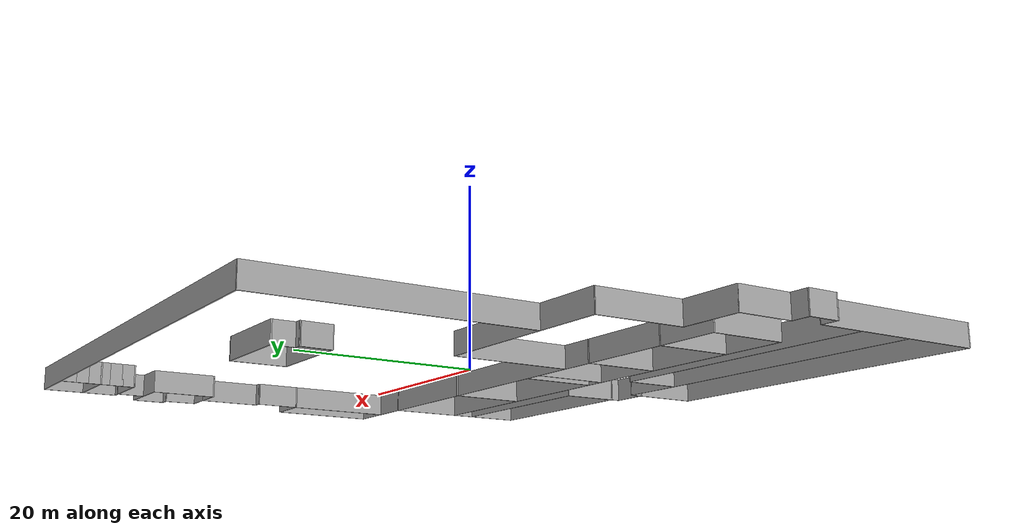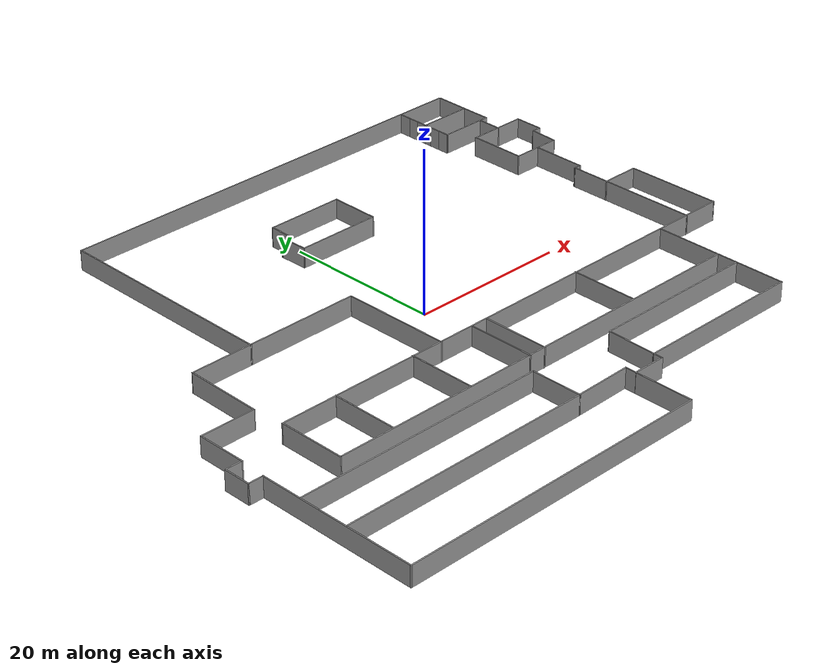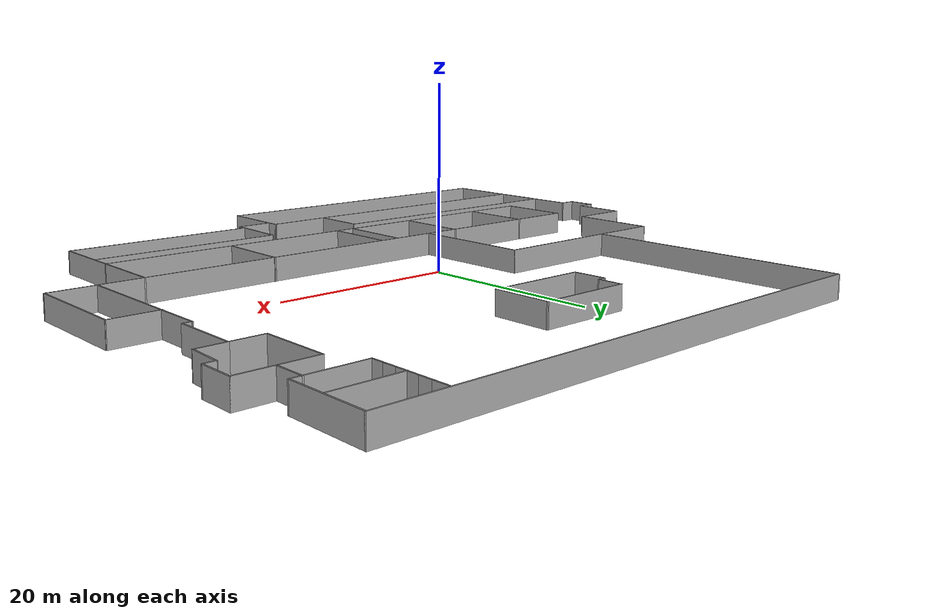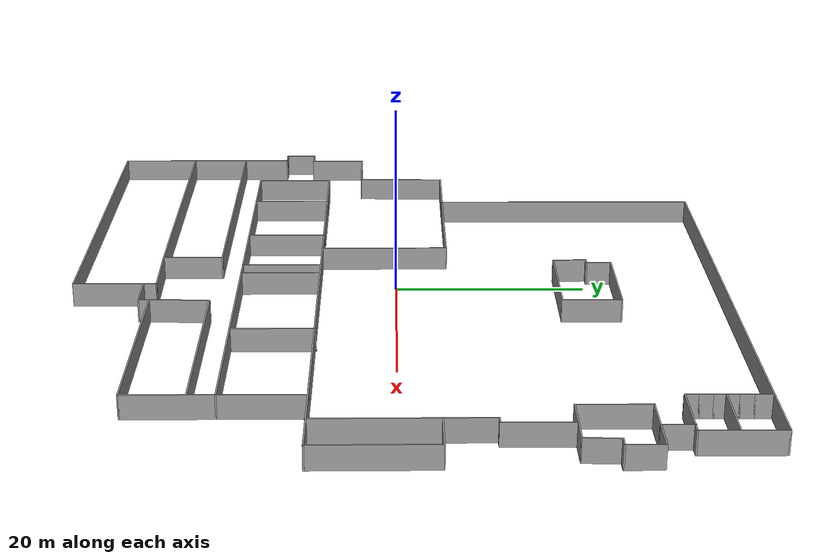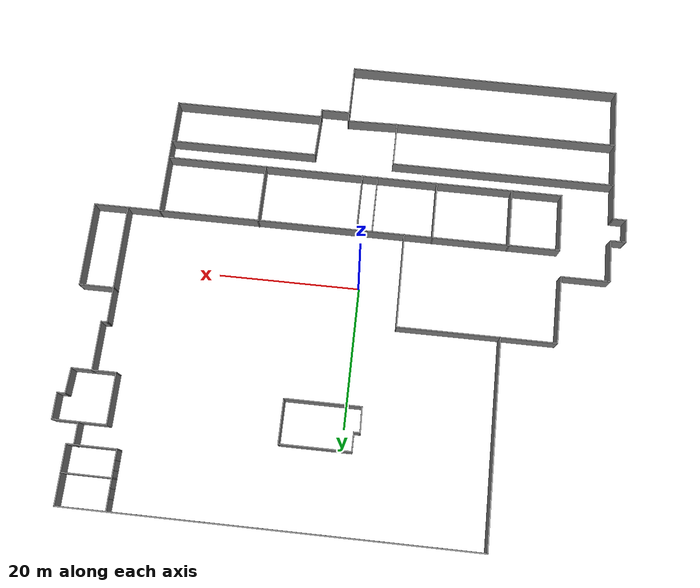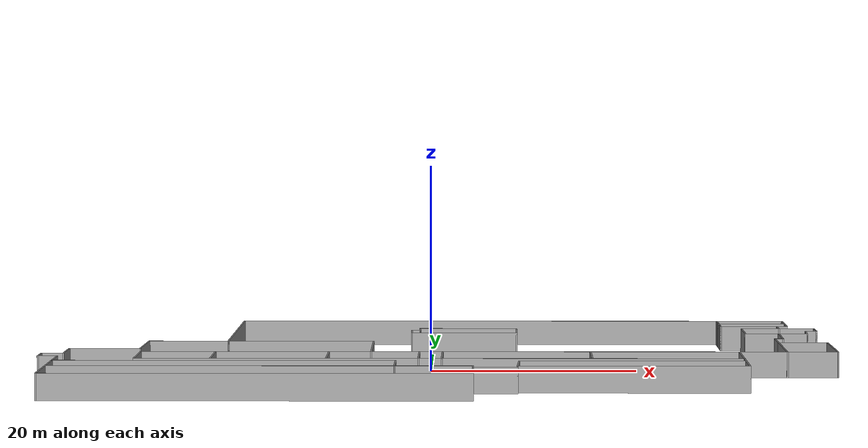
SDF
<?xml version='1.0'?>
<sdf version='1.7'>
  <model name='85_4f_walls'>
    <pose>1.01713 0.175249 0 0 -0 0</pose>
    <link name='Wall_0'>
      <collision name='Wall_0_Collision'>
        <geometry>
          <box>
            <size>56.75 0.15 2.5</size>
          </box>
        </geometry>
        <pose>0 0 1.25 0 -0 0</pose>
      </collision>
      <visual name='Wall_0_Visual'>
        <pose>0 0 1.25 0 -0 0</pose>
        <geometry>
          <box>
            <size>56.75 0.15 2.5</size>
          </box>
        </geometry>
        <material>
          <script>
            <uri>file://media/materials/scripts/gazebo.material</uri>
            <name>Gazebo/Grey</name>
          </script>
          <ambient>1 1 1 1</ambient>
        </material>
        <meta>
          <layer>0</layer>
        </meta>
      </visual>
      <pose>7.19412 33.9066 0 0 -0 0</pose>
    </link>
    <link name='Wall_1'>
      <collision name='Wall_1_Collision'>
        <geometry>
          <box>
            <size>8.25 0.15 2.5</size>
          </box>
        </geometry>
        <pose>0 0 1.25 0 -0 0</pose>
      </collision>
      <visual name='Wall_1_Visual'>
        <pose>0 0 1.25 0 -0 0</pose>
        <geometry>
          <box>
            <size>8.25 0.15 2.5</size>
          </box>
        </geometry>
        <material>
          <script>
            <uri>file://media/materials/scripts/gazebo.material</uri>
            <name>Gazebo/Grey</name>
          </script>
          <ambient>1 1 1 1</ambient>
        </material>
        <meta>
          <layer>0</layer>
        </meta>
      </visual>
      <pose>35.4941 29.8566 0 0 -0 -1.5708</pose>
    </link>
    <link name='Wall_11'>
      <collision name='Wall_11_Collision'>
        <geometry>
          <box>
            <size>7 0.15 2.5</size>
          </box>
        </geometry>
        <pose>0 0 1.25 0 -0 0</pose>
      </collision>
      <visual name='Wall_11_Visual'>
        <pose>0 0 1.25 0 -0 0</pose>
        <geometry>
          <box>
            <size>7 0.15 2.5</size>
          </box>
        </geometry>
        <material>
          <script>
            <uri>file://media/materials/scripts/gazebo.material</uri>
            <name>Gazebo/Grey</name>
          </script>
          <ambient>1 1 1 1</ambient>
        </material>
        <meta>
          <layer>0</layer>
        </meta>
      </visual>
      <pose>32.0479 29.5726 0 0 -0 3.14159</pose>
    </link>
    <link name='Wall_13'>
      <collision name='Wall_13_Collision'>
        <geometry>
          <box>
            <size>28.7814 0.15 2.5</size>
          </box>
        </geometry>
        <pose>0 0 1.25 0 -0 0</pose>
      </collision>
      <visual name='Wall_13_Visual'>
        <pose>0 0 1.25 0 -0 0</pose>
        <geometry>
          <box>
            <size>28.7814 0.15 2.5</size>
          </box>
        </geometry>
        <material>
          <script>
            <uri>file://media/materials/scripts/gazebo.material</uri>
            <name>Gazebo/Grey</name>
          </script>
          <ambient>1 1 1 1</ambient>
        </material>
        <meta>
          <layer>0</layer>
        </meta>
      </visual>
      <pose>-21.1216 19.591 0 0 -0 -1.57189</pose>
    </link>
    <link name='Wall_14'>
      <collision name='Wall_14_Collision'>
        <geometry>
          <box>
            <size>14.5314 0.15 2.5</size>
          </box>
        </geometry>
        <pose>0 0 1.25 0 -0 0</pose>
      </collision>
      <visual name='Wall_14_Visual'>
        <pose>0 0 1.25 0 -0 0</pose>
        <geometry>
          <box>
            <size>14.5314 0.15 2.5</size>
          </box>
        </geometry>
        <material>
          <script>
            <uri>file://media/materials/scripts/gazebo.material</uri>
            <name>Gazebo/Grey</name>
          </script>
          <ambient>1 1 1 1</ambient>
        </material>
        <meta>
          <layer>0</layer>
        </meta>
      </visual>
      <pose>-13.9466 5.29096 0 0 -0 0.002181</pose>
    </link>
    <link name='Wall_15'>
      <collision name='Wall_15_Collision'>
        <geometry>
          <box>
            <size>13.7495 0.15 2.5</size>
          </box>
        </geometry>
        <pose>0 0 1.25 0 -0 0</pose>
      </collision>
      <visual name='Wall_15_Visual'>
        <pose>0 0 1.25 0 -0 0</pose>
        <geometry>
          <box>
            <size>13.7495 0.15 2.5</size>
          </box>
        </geometry>
        <material>
          <script>
            <uri>file://media/materials/scripts/gazebo.material</uri>
            <name>Gazebo/Grey</name>
          </script>
          <ambient>1 1 1 1</ambient>
        </material>
        <meta>
          <layer>0</layer>
        </meta>
      </visual>
      <pose>-6.70238 -1.49288 0 0 -0 -1.56293</pose>
    </link>
    <link name='Wall_16'>
      <collision name='Wall_16_Collision'>
        <geometry>
          <box>
            <size>40 0.15 2.5</size>
          </box>
        </geometry>
        <pose>0 0 1.25 0 -0 0</pose>
      </collision>
      <visual name='Wall_16_Visual'>
        <pose>0 0 1.25 0 -0 0</pose>
        <geometry>
          <box>
            <size>40 0.15 2.5</size>
          </box>
        </geometry>
        <material>
          <script>
            <uri>file://media/materials/scripts/gazebo.material</uri>
            <name>Gazebo/Grey</name>
          </script>
          <ambient>1 1 1 1</ambient>
        </material>
        <meta>
          <layer>0</layer>
        </meta>
      </visual>
      <pose>13.2761 -8.25672 0 0 -0 0</pose>
    </link>
    <link name='Wall_17'>
      <collision name='Wall_17_Collision'>
        <geometry>
          <box>
            <size>17.2494 0.15 2.5</size>
          </box>
        </geometry>
        <pose>0 0 1.25 0 -0 0</pose>
      </collision>
      <visual name='Wall_17_Visual'>
        <pose>0 0 1.25 0 -0 0</pose>
        <geometry>
          <box>
            <size>17.2494 0.15 2.5</size>
          </box>
        </geometry>
        <material>
          <script>
            <uri>file://media/materials/scripts/gazebo.material</uri>
            <name>Gazebo/Grey</name>
          </script>
          <ambient>1 1 1 1</ambient>
        </material>
        <meta>
          <layer>0</layer>
        </meta>
      </visual>
      <pose>33.1476 0.257124 0 0 -0 1.57705</pose>
    </link>
    <link name='Wall_18'>
      <collision name='Wall_18_Collision'>
        <geometry>
          <box>
            <size>1 0.15 2.5</size>
          </box>
        </geometry>
        <pose>0 0 1.25 0 -0 0</pose>
      </collision>
      <visual name='Wall_18_Visual'>
        <pose>0 0 1.25 0 -0 0</pose>
        <geometry>
          <box>
            <size>1 0.15 2.5</size>
          </box>
        </geometry>
        <material>
          <script>
            <uri>file://media/materials/scripts/gazebo.material</uri>
            <name>Gazebo/Grey</name>
          </script>
          <ambient>1 1 1 1</ambient>
        </material>
        <meta>
          <layer>0</layer>
        </meta>
      </visual>
      <pose>33.5191 8.80664 0 0 -0 0</pose>
    </link>
    <link name='Wall_19'>
      <collision name='Wall_19_Collision'>
        <geometry>
          <box>
            <size>7 0.15 2.5</size>
          </box>
        </geometry>
        <pose>0 0 1.25 0 -0 0</pose>
      </collision>
      <visual name='Wall_19_Visual'>
        <pose>0 0 1.25 0 -0 0</pose>
        <geometry>
          <box>
            <size>7 0.15 2.5</size>
          </box>
        </geometry>
        <material>
          <script>
            <uri>file://media/materials/scripts/gazebo.material</uri>
            <name>Gazebo/Grey</name>
          </script>
          <ambient>1 1 1 1</ambient>
        </material>
        <meta>
          <layer>0</layer>
        </meta>
      </visual>
      <pose>33.9441 12.2316 0 0 -0 1.5708</pose>
    </link>
    <link name='Wall_20'>
      <collision name='Wall_20_Collision'>
        <geometry>
          <box>
            <size>3.5 0.15 2.5</size>
          </box>
        </geometry>
        <pose>0 0 1.25 0 -0 0</pose>
      </collision>
      <visual name='Wall_20_Visual'>
        <pose>0 0 1.25 0 -0 0</pose>
        <geometry>
          <box>
            <size>3.5 0.15 2.5</size>
          </box>
        </geometry>
        <material>
          <script>
            <uri>file://media/materials/scripts/gazebo.material</uri>
            <name>Gazebo/Grey</name>
          </script>
          <ambient>1 1 1 1</ambient>
        </material>
        <meta>
          <layer>0</layer>
        </meta>
      </visual>
      <pose>32.2691 15.6566 0 0 -0 3.14159</pose>
    </link>
    <link name='Wall_21'>
      <collision name='Wall_21_Collision'>
        <geometry>
          <box>
            <size>7.26773 0.15 2.5</size>
          </box>
        </geometry>
        <pose>0 0 1.25 0 -0 0</pose>
      </collision>
      <visual name='Wall_21_Visual'>
        <pose>0 0 1.25 0 -0 0</pose>
        <geometry>
          <box>
            <size>7.26773 0.15 2.5</size>
          </box>
        </geometry>
        <material>
          <script>
            <uri>file://media/materials/scripts/gazebo.material</uri>
            <name>Gazebo/Grey</name>
          </script>
          <ambient>1 1 1 1</ambient>
        </material>
        <meta>
          <layer>0</layer>
        </meta>
      </visual>
      <pose>30.5941 19.2155 0 0 -0 1.5708</pose>
    </link>
    <link name='Wall_22'>
      <collision name='Wall_22_Collision'>
        <geometry>
          <box>
            <size>4 0.15 2.5</size>
          </box>
        </geometry>
        <pose>0 0 1.25 0 -0 0</pose>
      </collision>
      <visual name='Wall_22_Visual'>
        <pose>0 0 1.25 0 -0 0</pose>
        <geometry>
          <box>
            <size>4 0.15 2.5</size>
          </box>
        </geometry>
        <material>
          <script>
            <uri>file://media/materials/scripts/gazebo.material</uri>
            <name>Gazebo/Grey</name>
          </script>
          <ambient>1 1 1 1</ambient>
        </material>
        <meta>
          <layer>0</layer>
        </meta>
      </visual>
      <pose>32.5191 22.7744 0 0 -0 0</pose>
    </link>
    <link name='Wall_25'>
      <collision name='Wall_25_Collision'>
        <geometry>
          <box>
            <size>3.23227 0.15 2.5</size>
          </box>
        </geometry>
        <pose>0 0 1.25 0 -0 0</pose>
      </collision>
      <visual name='Wall_25_Visual'>
        <pose>0 0 1.25 0 -0 0</pose>
        <geometry>
          <box>
            <size>3.23227 0.15 2.5</size>
          </box>
        </geometry>
        <material>
          <script>
            <uri>file://media/materials/scripts/gazebo.material</uri>
            <name>Gazebo/Grey</name>
          </script>
          <ambient>1 1 1 1</ambient>
        </material>
        <meta>
          <layer>0</layer>
        </meta>
      </visual>
      <pose>34.4441 24.3155 0 0 -0 1.5708</pose>
    </link>
    <link name='Wall_27'>
      <collision name='Wall_27_Collision'>
        <geometry>
          <box>
            <size>3 0.15 2.5</size>
          </box>
        </geometry>
        <pose>0 0 1.25 0 -0 0</pose>
      </collision>
      <visual name='Wall_27_Visual'>
        <pose>0 0 1.25 0 -0 0</pose>
        <geometry>
          <box>
            <size>3 0.15 2.5</size>
          </box>
        </geometry>
        <material>
          <script>
            <uri>file://media/materials/scripts/gazebo.material</uri>
            <name>Gazebo/Grey</name>
          </script>
          <ambient>1 1 1 1</ambient>
        </material>
        <meta>
          <layer>0</layer>
        </meta>
      </visual>
      <pose>35.3691 15.6566 0 0 -0 0</pose>
    </link>
    <link name='Wall_35'>
      <collision name='Wall_35_Collision'>
        <geometry>
          <box>
            <size>3.75 0.15 2.5</size>
          </box>
        </geometry>
        <pose>0 0 1.25 0 -0 0</pose>
      </collision>
      <visual name='Wall_35_Visual'>
        <pose>0 0 1.25 0 -0 0</pose>
        <geometry>
          <box>
            <size>3.75 0.15 2.5</size>
          </box>
        </geometry>
        <material>
          <script>
            <uri>file://media/materials/scripts/gazebo.material</uri>
            <name>Gazebo/Grey</name>
          </script>
          <ambient>1 1 1 1</ambient>
        </material>
        <meta>
          <layer>0</layer>
        </meta>
      </visual>
      <pose>36.2441 22.7744 0 0 -0 0</pose>
    </link>
    <link name='Wall_36'>
      <collision name='Wall_36_Collision'>
        <geometry>
          <box>
            <size>3.75 0.15 2.5</size>
          </box>
        </geometry>
        <pose>0 0 1.25 0 -0 0</pose>
      </collision>
      <visual name='Wall_36_Visual'>
        <pose>0 0 1.25 0 -0 0</pose>
        <geometry>
          <box>
            <size>3.75 0.15 2.5</size>
          </box>
        </geometry>
        <material>
          <script>
            <uri>file://media/materials/scripts/gazebo.material</uri>
            <name>Gazebo/Grey</name>
          </script>
          <ambient>1 1 1 1</ambient>
        </material>
        <meta>
          <layer>0</layer>
        </meta>
      </visual>
      <pose>38.0441 20.9744 0 0 -0 -1.5708</pose>
    </link>
    <link name='Wall_37'>
      <collision name='Wall_37_Collision'>
        <geometry>
          <box>
            <size>1.25 0.15 2.5</size>
          </box>
        </geometry>
        <pose>0 0 1.25 0 -0 0</pose>
      </collision>
      <visual name='Wall_37_Visual'>
        <pose>0 0 1.25 0 -0 0</pose>
        <geometry>
          <box>
            <size>1.25 0.15 2.5</size>
          </box>
        </geometry>
        <material>
          <script>
            <uri>file://media/materials/scripts/gazebo.material</uri>
            <name>Gazebo/Grey</name>
          </script>
          <ambient>1 1 1 1</ambient>
        </material>
        <meta>
          <layer>0</layer>
        </meta>
      </visual>
      <pose>37.4941 19.1744 0 0 -0 3.14159</pose>
    </link>
    <link name='Wall_38'>
      <collision name='Wall_38_Collision'>
        <geometry>
          <box>
            <size>3.67093 0.15 2.5</size>
          </box>
        </geometry>
        <pose>0 0 1.25 0 -0 0</pose>
      </collision>
      <visual name='Wall_38_Visual'>
        <pose>0 0 1.25 0 -0 0</pose>
        <geometry>
          <box>
            <size>3.67093 0.15 2.5</size>
          </box>
        </geometry>
        <material>
          <script>
            <uri>file://media/materials/scripts/gazebo.material</uri>
            <name>Gazebo/Grey</name>
          </script>
          <ambient>1 1 1 1</ambient>
        </material>
        <meta>
          <layer>0</layer>
        </meta>
      </visual>
      <pose>36.8691 17.4155 0 0 -0 -1.61341</pose>
    </link>
    <link name='Wall_4'>
      <collision name='Wall_4_Collision'>
        <geometry>
          <box>
            <size>7 0.15 2.5</size>
          </box>
        </geometry>
        <pose>0 0 1.25 0 -0 0</pose>
      </collision>
      <visual name='Wall_4_Visual'>
        <pose>0 0 1.25 0 -0 0</pose>
        <geometry>
          <box>
            <size>7 0.15 2.5</size>
          </box>
        </geometry>
        <material>
          <script>
            <uri>file://media/materials/scripts/gazebo.material</uri>
            <name>Gazebo/Grey</name>
          </script>
          <ambient>1 1 1 1</ambient>
        </material>
        <meta>
          <layer>0</layer>
        </meta>
      </visual>
      <pose>32.0691 25.8066 0 0 -0 3.14159</pose>
    </link>
    <link name='Wall_40'>
      <collision name='Wall_40_Collision'>
        <geometry>
          <box>
            <size>5 0.15 2.5</size>
          </box>
        </geometry>
        <pose>0 0 1.25 0 -0 0</pose>
      </collision>
      <visual name='Wall_40_Visual'>
        <pose>0 0 1.25 0 -0 0</pose>
        <geometry>
          <box>
            <size>5 0.15 2.5</size>
          </box>
        </geometry>
        <material>
          <script>
            <uri>file://media/materials/scripts/gazebo.material</uri>
            <name>Gazebo/Grey</name>
          </script>
          <ambient>1 1 1 1</ambient>
        </material>
        <meta>
          <layer>0</layer>
        </meta>
      </visual>
      <pose>35.5175 3.82548 0 0 -0 0</pose>
    </link>
    <link name='Wall_41'>
      <collision name='Wall_41_Collision'>
        <geometry>
          <box>
            <size>12.2274 0.15 2.5</size>
          </box>
        </geometry>
        <pose>0 0 1.25 0 -0 0</pose>
      </collision>
      <visual name='Wall_41_Visual'>
        <pose>0 0 1.25 0 -0 0</pose>
        <geometry>
          <box>
            <size>12.2274 0.15 2.5</size>
          </box>
        </geometry>
        <material>
          <script>
            <uri>file://media/materials/scripts/gazebo.material</uri>
            <name>Gazebo/Grey</name>
          </script>
          <ambient>1 1 1 1</ambient>
        </material>
        <meta>
          <layer>0</layer>
        </meta>
      </visual>
      <pose>37.9868 -2.21306 0 0 -0 -1.56346</pose>
    </link>
    <link name='Wall_42'>
      <collision name='Wall_42_Collision'>
        <geometry>
          <box>
            <size>5 0.15 2.5</size>
          </box>
        </geometry>
        <pose>0 0 1.25 0 -0 0</pose>
      </collision>
      <visual name='Wall_42_Visual'>
        <pose>0 0 1.25 0 -0 0</pose>
        <geometry>
          <box>
            <size>5 0.15 2.5</size>
          </box>
        </geometry>
        <material>
          <script>
            <uri>file://media/materials/scripts/gazebo.material</uri>
            <name>Gazebo/Grey</name>
          </script>
          <ambient>1 1 1 1</ambient>
        </material>
        <meta>
          <layer>0</layer>
        </meta>
      </visual>
      <pose>35.6239 -8.25159 0 0 -0 3.14159</pose>
    </link>
    <link name='Wall_45'>
      <collision name='Wall_45_Collision'>
        <geometry>
          <box>
            <size>22.25 0.15 2.5</size>
          </box>
        </geometry>
        <pose>0 0 1.25 0 -0 0</pose>
      </collision>
      <visual name='Wall_45_Visual'>
        <pose>0 0 1.25 0 -0 0</pose>
        <geometry>
          <box>
            <size>22.25 0.15 2.5</size>
          </box>
        </geometry>
        <material>
          <script>
            <uri>file://media/materials/scripts/gazebo.material</uri>
            <name>Gazebo/Grey</name>
          </script>
          <ambient>1 1 1 1</ambient>
        </material>
        <meta>
          <layer>0</layer>
        </meta>
      </visual>
      <pose>-17.6989 -8.25672 0 0 -0 3.14159</pose>
    </link>
    <link name='Wall_46'>
      <collision name='Wall_46_Collision'>
        <geometry>
          <box>
            <size>8.5 0.15 2.5</size>
          </box>
        </geometry>
        <pose>0 0 1.25 0 -0 0</pose>
      </collision>
      <visual name='Wall_46_Visual'>
        <pose>0 0 1.25 0 -0 0</pose>
        <geometry>
          <box>
            <size>8.5 0.15 2.5</size>
          </box>
        </geometry>
        <material>
          <script>
            <uri>file://media/materials/scripts/gazebo.material</uri>
            <name>Gazebo/Grey</name>
          </script>
          <ambient>1 1 1 1</ambient>
        </material>
        <meta>
          <layer>0</layer>
        </meta>
      </visual>
      <pose>-28.7489 -12.4317 0 0 -0 -1.5708</pose>
    </link>
    <link name='Wall_47'>
      <collision name='Wall_47_Collision'>
        <geometry>
          <box>
            <size>57.5 0.15 2.5</size>
          </box>
        </geometry>
        <pose>0 0 1.25 0 -0 0</pose>
      </collision>
      <visual name='Wall_47_Visual'>
        <pose>0 0 1.25 0 -0 0</pose>
        <geometry>
          <box>
            <size>57.5 0.15 2.5</size>
          </box>
        </geometry>
        <material>
          <script>
            <uri>file://media/materials/scripts/gazebo.material</uri>
            <name>Gazebo/Grey</name>
          </script>
          <ambient>1 1 1 1</ambient>
        </material>
        <meta>
          <layer>0</layer>
        </meta>
      </visual>
      <pose>-0.073876 -16.6067 0 0 -0 0</pose>
    </link>
    <link name='Wall_48'>
      <collision name='Wall_48_Collision'>
        <geometry>
          <box>
            <size>8.5 0.15 2.5</size>
          </box>
        </geometry>
        <pose>0 0 1.25 0 -0 0</pose>
      </collision>
      <visual name='Wall_48_Visual'>
        <pose>0 0 1.25 0 -0 0</pose>
        <geometry>
          <box>
            <size>8.5 0.15 2.5</size>
          </box>
        </geometry>
        <material>
          <script>
            <uri>file://media/materials/scripts/gazebo.material</uri>
            <name>Gazebo/Grey</name>
          </script>
          <ambient>1 1 1 1</ambient>
        </material>
        <meta>
          <layer>0</layer>
        </meta>
      </visual>
      <pose>28.6011 -12.4317 0 0 -0 1.5708</pose>
    </link>
    <link name='Wall_5'>
      <collision name='Wall_5_Collision'>
        <geometry>
          <box>
            <size>1.5 0.15 2.5</size>
          </box>
        </geometry>
        <pose>0 0 1.25 0 -0 0</pose>
      </collision>
      <visual name='Wall_5_Visual'>
        <pose>0 0 1.25 0 -0 0</pose>
        <geometry>
          <box>
            <size>1.5 0.15 2.5</size>
          </box>
        </geometry>
        <material>
          <script>
            <uri>file://media/materials/scripts/gazebo.material</uri>
            <name>Gazebo/Grey</name>
          </script>
          <ambient>1 1 1 1</ambient>
        </material>
        <meta>
          <layer>0</layer>
        </meta>
      </visual>
      <pose>28.6441 26.4816 0 0 -0 1.5708</pose>
    </link>
    <link name='Wall_50'>
      <collision name='Wall_50_Collision'>
        <geometry>
          <box>
            <size>8.5 0.15 2.5</size>
          </box>
        </geometry>
        <pose>0 0 1.25 0 -0 0</pose>
      </collision>
      <visual name='Wall_50_Visual'>
        <pose>0 0 1.25 0 -0 0</pose>
        <geometry>
          <box>
            <size>8.5 0.15 2.5</size>
          </box>
        </geometry>
        <material>
          <script>
            <uri>file://media/materials/scripts/gazebo.material</uri>
            <name>Gazebo/Grey</name>
          </script>
          <ambient>1 1 1 1</ambient>
        </material>
        <meta>
          <layer>0</layer>
        </meta>
      </visual>
      <pose>-2.02252 -12.4746 0 0 -0 1.5708</pose>
    </link>
    <link name='Wall_52'>
      <collision name='Wall_52_Collision'>
        <geometry>
          <box>
            <size>8.5 0.15 2.5</size>
          </box>
        </geometry>
        <pose>0 0 1.25 0 -0 0</pose>
      </collision>
      <visual name='Wall_52_Visual'>
        <pose>0 0 1.25 0 -0 0</pose>
        <geometry>
          <box>
            <size>8.5 0.15 2.5</size>
          </box>
        </geometry>
        <material>
          <script>
            <uri>file://media/materials/scripts/gazebo.material</uri>
            <name>Gazebo/Grey</name>
          </script>
          <ambient>1 1 1 1</ambient>
        </material>
        <meta>
          <layer>0</layer>
        </meta>
      </visual>
      <pose>0.18892 -12.4746 0 0 -0 1.5708</pose>
    </link>
    <link name='Wall_54'>
      <collision name='Wall_54_Collision'>
        <geometry>
          <box>
            <size>8.5 0.15 2.5</size>
          </box>
        </geometry>
        <pose>0 0 1.25 0 -0 0</pose>
      </collision>
      <visual name='Wall_54_Visual'>
        <pose>0 0 1.25 0 -0 0</pose>
        <geometry>
          <box>
            <size>8.5 0.15 2.5</size>
          </box>
        </geometry>
        <material>
          <script>
            <uri>file://media/materials/scripts/gazebo.material</uri>
            <name>Gazebo/Grey</name>
          </script>
          <ambient>1 1 1 1</ambient>
        </material>
        <meta>
          <layer>0</layer>
        </meta>
      </visual>
      <pose>14.3492 -12.3319 0 0 -0 1.5708</pose>
    </link>
    <link name='Wall_56'>
      <collision name='Wall_56_Collision'>
        <geometry>
          <box>
            <size>8.5 0.15 2.5</size>
          </box>
        </geometry>
        <pose>0 0 1.25 0 -0 0</pose>
      </collision>
      <visual name='Wall_56_Visual'>
        <pose>0 0 1.25 0 -0 0</pose>
        <geometry>
          <box>
            <size>8.5 0.15 2.5</size>
          </box>
        </geometry>
        <material>
          <script>
            <uri>file://media/materials/scripts/gazebo.material</uri>
            <name>Gazebo/Grey</name>
          </script>
          <ambient>1 1 1 1</ambient>
        </material>
        <meta>
          <layer>0</layer>
        </meta>
      </visual>
      <pose>-21.5688 -12.4069 0 0 -0 -1.5708</pose>
    </link>
    <link name='Wall_58'>
      <collision name='Wall_58_Collision'>
        <geometry>
          <box>
            <size>8.5 0.15 2.5</size>
          </box>
        </geometry>
        <pose>0 0 1.25 0 -0 0</pose>
      </collision>
      <visual name='Wall_58_Visual'>
        <pose>0 0 1.25 0 -0 0</pose>
        <geometry>
          <box>
            <size>8.5 0.15 2.5</size>
          </box>
        </geometry>
        <material>
          <script>
            <uri>file://media/materials/scripts/gazebo.material</uri>
            <name>Gazebo/Grey</name>
          </script>
          <ambient>1 1 1 1</ambient>
        </material>
        <meta>
          <layer>0</layer>
        </meta>
      </visual>
      <pose>-10.6899 -12.3712 0 0 -0 -1.5708</pose>
    </link>
    <link name='Wall_6'>
      <collision name='Wall_6_Collision'>
        <geometry>
          <box>
            <size>1.5 0.15 2.5</size>
          </box>
        </geometry>
        <pose>0 0 1.25 0 -0 0</pose>
      </collision>
      <visual name='Wall_6_Visual'>
        <pose>0 0 1.25 0 -0 0</pose>
        <geometry>
          <box>
            <size>1.5 0.15 2.5</size>
          </box>
        </geometry>
        <material>
          <script>
            <uri>file://media/materials/scripts/gazebo.material</uri>
            <name>Gazebo/Grey</name>
          </script>
          <ambient>1 1 1 1</ambient>
        </material>
        <meta>
          <layer>0</layer>
        </meta>
      </visual>
      <pose>28.6441 27.8316 0 0 -0 1.5708</pose>
    </link>
    <link name='Wall_60'>
      <collision name='Wall_60_Collision'>
        <geometry>
          <box>
            <size>9 0.15 2.5</size>
          </box>
        </geometry>
        <pose>0 0 1.25 0 -0 0</pose>
      </collision>
      <visual name='Wall_60_Visual'>
        <pose>0 0 1.25 0 -0 0</pose>
        <geometry>
          <box>
            <size>9 0.15 2.5</size>
          </box>
        </geometry>
        <material>
          <script>
            <uri>file://media/materials/scripts/gazebo.material</uri>
            <name>Gazebo/Grey</name>
          </script>
          <ambient>1 1 1 1</ambient>
        </material>
        <meta>
          <layer>0</layer>
        </meta>
      </visual>
      <pose>28.6011 -21.0317 0 0 -0 -1.5708</pose>
    </link>
    <link name='Wall_61'>
      <collision name='Wall_61_Collision'>
        <geometry>
          <box>
            <size>21.5 0.15 2.5</size>
          </box>
        </geometry>
        <pose>0 0 1.25 0 -0 0</pose>
      </collision>
      <visual name='Wall_61_Visual'>
        <pose>0 0 1.25 0 -0 0</pose>
        <geometry>
          <box>
            <size>21.5 0.15 2.5</size>
          </box>
        </geometry>
        <material>
          <script>
            <uri>file://media/materials/scripts/gazebo.material</uri>
            <name>Gazebo/Grey</name>
          </script>
          <ambient>1 1 1 1</ambient>
        </material>
        <meta>
          <layer>0</layer>
        </meta>
      </visual>
      <pose>17.9261 -25.4567 0 0 -0 3.14159</pose>
    </link>
    <link name='Wall_62'>
      <collision name='Wall_62_Collision'>
        <geometry>
          <box>
            <size>1.25 0.15 2.5</size>
          </box>
        </geometry>
        <pose>0 0 1.25 0 -0 0</pose>
      </collision>
      <visual name='Wall_62_Visual'>
        <pose>0 0 1.25 0 -0 0</pose>
        <geometry>
          <box>
            <size>1.25 0.15 2.5</size>
          </box>
        </geometry>
        <material>
          <script>
            <uri>file://media/materials/scripts/gazebo.material</uri>
            <name>Gazebo/Grey</name>
          </script>
          <ambient>1 1 1 1</ambient>
        </material>
        <meta>
          <layer>0</layer>
        </meta>
      </visual>
      <pose>7.25112 -26.0067 0 0 -0 -1.5708</pose>
    </link>
    <link name='Wall_63'>
      <collision name='Wall_63_Collision'>
        <geometry>
          <box>
            <size>4.25 0.15 2.5</size>
          </box>
        </geometry>
        <pose>0 0 1.25 0 -0 0</pose>
      </collision>
      <visual name='Wall_63_Visual'>
        <pose>0 0 1.25 0 -0 0</pose>
        <geometry>
          <box>
            <size>4.25 0.15 2.5</size>
          </box>
        </geometry>
        <material>
          <script>
            <uri>file://media/materials/scripts/gazebo.material</uri>
            <name>Gazebo/Grey</name>
          </script>
          <ambient>1 1 1 1</ambient>
        </material>
        <meta>
          <layer>0</layer>
        </meta>
      </visual>
      <pose>5.20112 -26.5567 0 0 -0 3.14159</pose>
    </link>
    <link name='Wall_64'>
      <collision name='Wall_64_Collision'>
        <geometry>
          <box>
            <size>7.5 0.15 2.5</size>
          </box>
        </geometry>
        <pose>0 0 1.25 0 -0 0</pose>
      </collision>
      <visual name='Wall_64_Visual'>
        <pose>0 0 1.25 0 -0 0</pose>
        <geometry>
          <box>
            <size>7.5 0.15 2.5</size>
          </box>
        </geometry>
        <material>
          <script>
            <uri>file://media/materials/scripts/gazebo.material</uri>
            <name>Gazebo/Grey</name>
          </script>
          <ambient>1 1 1 1</ambient>
        </material>
        <meta>
          <layer>0</layer>
        </meta>
      </visual>
      <pose>3.15112 -30.2317 0 0 -0 -1.5708</pose>
    </link>
    <link name='Wall_65'>
      <collision name='Wall_65_Collision'>
        <geometry>
          <box>
            <size>39.5 0.15 2.5</size>
          </box>
        </geometry>
        <pose>0 0 1.25 0 -0 0</pose>
      </collision>
      <visual name='Wall_65_Visual'>
        <pose>0 0 1.25 0 -0 0</pose>
        <geometry>
          <box>
            <size>39.5 0.15 2.5</size>
          </box>
        </geometry>
        <material>
          <script>
            <uri>file://media/materials/scripts/gazebo.material</uri>
            <name>Gazebo/Grey</name>
          </script>
          <ambient>1 1 1 1</ambient>
        </material>
        <meta>
          <layer>0</layer>
        </meta>
      </visual>
      <pose>-16.5239 -33.9067 0 0 -0 3.14159</pose>
    </link>
    <link name='Wall_66'>
      <collision name='Wall_66_Collision'>
        <geometry>
          <box>
            <size>20.25 0.15 2.5</size>
          </box>
        </geometry>
        <pose>0 0 1.25 0 -0 0</pose>
      </collision>
      <visual name='Wall_66_Visual'>
        <pose>0 0 1.25 0 -0 0</pose>
        <geometry>
          <box>
            <size>20.25 0.15 2.5</size>
          </box>
        </geometry>
        <material>
          <script>
            <uri>file://media/materials/scripts/gazebo.material</uri>
            <name>Gazebo/Grey</name>
          </script>
          <ambient>1 1 1 1</ambient>
        </material>
        <meta>
          <layer>0</layer>
        </meta>
      </visual>
      <pose>-36.1989 -23.8567 0 0 -0 1.5708</pose>
    </link>
    <link name='Wall_67'>
      <collision name='Wall_67_Collision'>
        <geometry>
          <box>
            <size>2 0.15 2.5</size>
          </box>
        </geometry>
        <pose>0 0 1.25 0 -0 0</pose>
      </collision>
      <visual name='Wall_67_Visual'>
        <pose>0 0 1.25 0 -0 0</pose>
        <geometry>
          <box>
            <size>2 0.15 2.5</size>
          </box>
        </geometry>
        <material>
          <script>
            <uri>file://media/materials/scripts/gazebo.material</uri>
            <name>Gazebo/Grey</name>
          </script>
          <ambient>1 1 1 1</ambient>
        </material>
        <meta>
          <layer>0</layer>
        </meta>
      </visual>
      <pose>-37.1239 -13.8067 0 0 -0 3.14159</pose>
    </link>
    <link name='Wall_68'>
      <collision name='Wall_68_Collision'>
        <geometry>
          <box>
            <size>3.5 0.15 2.5</size>
          </box>
        </geometry>
        <pose>0 0 1.25 0 -0 0</pose>
      </collision>
      <visual name='Wall_68_Visual'>
        <pose>0 0 1.25 0 -0 0</pose>
        <geometry>
          <box>
            <size>3.5 0.15 2.5</size>
          </box>
        </geometry>
        <material>
          <script>
            <uri>file://media/materials/scripts/gazebo.material</uri>
            <name>Gazebo/Grey</name>
          </script>
          <ambient>1 1 1 1</ambient>
        </material>
        <meta>
          <layer>0</layer>
        </meta>
      </visual>
      <pose>-38.0489 -12.1317 0 0 -0 1.5708</pose>
    </link>
    <link name='Wall_69'>
      <collision name='Wall_69_Collision'>
        <geometry>
          <box>
            <size>2.25 0.15 2.5</size>
          </box>
        </geometry>
        <pose>0 0 1.25 0 -0 0</pose>
      </collision>
      <visual name='Wall_69_Visual'>
        <pose>0 0 1.25 0 -0 0</pose>
        <geometry>
          <box>
            <size>2.25 0.15 2.5</size>
          </box>
        </geometry>
        <material>
          <script>
            <uri>file://media/materials/scripts/gazebo.material</uri>
            <name>Gazebo/Grey</name>
          </script>
          <ambient>1 1 1 1</ambient>
        </material>
        <meta>
          <layer>0</layer>
        </meta>
      </visual>
      <pose>-36.9989 -10.4567 0 0 -0 0</pose>
    </link>
    <link name='Wall_7'>
      <collision name='Wall_7_Collision'>
        <geometry>
          <box>
            <size>2.5 0.15 2.5</size>
          </box>
        </geometry>
        <pose>0 0 1.25 0 -0 0</pose>
      </collision>
      <visual name='Wall_7_Visual'>
        <pose>0 0 1.25 0 -0 0</pose>
        <geometry>
          <box>
            <size>2.5 0.15 2.5</size>
          </box>
        </geometry>
        <material>
          <script>
            <uri>file://media/materials/scripts/gazebo.material</uri>
            <name>Gazebo/Grey</name>
          </script>
          <ambient>1 1 1 1</ambient>
        </material>
        <meta>
          <layer>0</layer>
        </meta>
      </visual>
      <pose>28.6441 29.6816 0 0 -0 1.5708</pose>
    </link>
    <link name='Wall_70'>
      <collision name='Wall_70_Collision'>
        <geometry>
          <box>
            <size>6.25 0.15 2.5</size>
          </box>
        </geometry>
        <pose>0 0 1.25 0 -0 0</pose>
      </collision>
      <visual name='Wall_70_Visual'>
        <pose>0 0 1.25 0 -0 0</pose>
        <geometry>
          <box>
            <size>6.25 0.15 2.5</size>
          </box>
        </geometry>
        <material>
          <script>
            <uri>file://media/materials/scripts/gazebo.material</uri>
            <name>Gazebo/Grey</name>
          </script>
          <ambient>1 1 1 1</ambient>
        </material>
        <meta>
          <layer>0</layer>
        </meta>
      </visual>
      <pose>-35.9489 -7.40672 0 0 -0 1.5708</pose>
    </link>
    <link name='Wall_71'>
      <collision name='Wall_71_Collision'>
        <geometry>
          <box>
            <size>7 0.15 2.5</size>
          </box>
        </geometry>
        <pose>0 0 1.25 0 -0 0</pose>
      </collision>
      <visual name='Wall_71_Visual'>
        <pose>0 0 1.25 0 -0 0</pose>
        <geometry>
          <box>
            <size>7 0.15 2.5</size>
          </box>
        </geometry>
        <material>
          <script>
            <uri>file://media/materials/scripts/gazebo.material</uri>
            <name>Gazebo/Grey</name>
          </script>
          <ambient>1 1 1 1</ambient>
        </material>
        <meta>
          <layer>0</layer>
        </meta>
      </visual>
      <pose>-32.5239 -4.35672 0 0 -0 0</pose>
    </link>
    <link name='Wall_72'>
      <collision name='Wall_72_Collision'>
        <geometry>
          <box>
            <size>9.78306 0.15 2.5</size>
          </box>
        </geometry>
        <pose>0 0 1.25 0 -0 0</pose>
      </collision>
      <visual name='Wall_72_Visual'>
        <pose>0 0 1.25 0 -0 0</pose>
        <geometry>
          <box>
            <size>9.78306 0.15 2.5</size>
          </box>
        </geometry>
        <material>
          <script>
            <uri>file://media/materials/scripts/gazebo.material</uri>
            <name>Gazebo/Grey</name>
          </script>
          <ambient>1 1 1 1</ambient>
        </material>
        <meta>
          <layer>0</layer>
        </meta>
      </visual>
      <pose>-29.0274 0.459274 0 0 -0 1.55595</pose>
    </link>
    <link name='Wall_73'>
      <collision name='Wall_73_Collision'>
        <geometry>
          <box>
            <size>8 0.15 2.5</size>
          </box>
        </geometry>
        <pose>0 0 1.25 0 -0 0</pose>
      </collision>
      <visual name='Wall_73_Visual'>
        <pose>0 0 1.25 0 -0 0</pose>
        <geometry>
          <box>
            <size>8 0.15 2.5</size>
          </box>
        </geometry>
        <material>
          <script>
            <uri>file://media/materials/scripts/gazebo.material</uri>
            <name>Gazebo/Grey</name>
          </script>
          <ambient>1 1 1 1</ambient>
        </material>
        <meta>
          <layer>0</layer>
        </meta>
      </visual>
      <pose>-25.0309 5.27527 0 0 -0 0</pose>
    </link>
    <link name='Wall_75'>
      <collision name='Wall_75_Collision'>
        <geometry>
          <box>
            <size>32.25 0.15 2.5</size>
          </box>
        </geometry>
        <pose>0 0 1.25 0 -0 0</pose>
      </collision>
      <visual name='Wall_75_Visual'>
        <pose>0 0 1.25 0 -0 0</pose>
        <geometry>
          <box>
            <size>32.25 0.15 2.5</size>
          </box>
        </geometry>
        <material>
          <script>
            <uri>file://media/materials/scripts/gazebo.material</uri>
            <name>Gazebo/Grey</name>
          </script>
          <ambient>1 1 1 1</ambient>
        </material>
        <meta>
          <layer>0</layer>
        </meta>
      </visual>
      <pose>-20.1315 -19.0141 0 0 -0 0</pose>
    </link>
    <link name='Wall_76'>
      <collision name='Wall_76_Collision'>
        <geometry>
          <box>
            <size>6.5 0.15 2.5</size>
          </box>
        </geometry>
        <pose>0 0 1.25 0 -0 0</pose>
      </collision>
      <visual name='Wall_76_Visual'>
        <pose>0 0 1.25 0 -0 0</pose>
        <geometry>
          <box>
            <size>6.5 0.15 2.5</size>
          </box>
        </geometry>
        <material>
          <script>
            <uri>file://media/materials/scripts/gazebo.material</uri>
            <name>Gazebo/Grey</name>
          </script>
          <ambient>1 1 1 1</ambient>
        </material>
        <meta>
          <layer>0</layer>
        </meta>
      </visual>
      <pose>-4.08155 -22.1891 0 0 -0 -1.5708</pose>
    </link>
    <link name='Wall_77'>
      <collision name='Wall_77_Collision'>
        <geometry>
          <box>
            <size>32.25 0.15 2.5</size>
          </box>
        </geometry>
        <pose>0 0 1.25 0 -0 0</pose>
      </collision>
      <visual name='Wall_77_Visual'>
        <pose>0 0 1.25 0 -0 0</pose>
        <geometry>
          <box>
            <size>32.25 0.15 2.5</size>
          </box>
        </geometry>
        <material>
          <script>
            <uri>file://media/materials/scripts/gazebo.material</uri>
            <name>Gazebo/Grey</name>
          </script>
          <ambient>1 1 1 1</ambient>
        </material>
        <meta>
          <layer>0</layer>
        </meta>
      </visual>
      <pose>-20.1315 -25.3641 0 0 -0 3.14159</pose>
    </link>
    <link name='Wall_79'>
      <collision name='Wall_79_Collision'>
        <geometry>
          <box>
            <size>7.38438 0.15 2.5</size>
          </box>
        </geometry>
        <pose>0 0 1.25 0 -0 0</pose>
      </collision>
      <visual name='Wall_79_Visual'>
        <pose>0 0 1.25 0 -0 0</pose>
        <geometry>
          <box>
            <size>7.38438 0.15 2.5</size>
          </box>
        </geometry>
        <material>
          <script>
            <uri>file://media/materials/scripts/gazebo.material</uri>
            <name>Gazebo/Grey</name>
          </script>
          <ambient>1 1 1 1</ambient>
        </material>
        <meta>
          <layer>0</layer>
        </meta>
      </visual>
      <pose>-0.465211 -25.2854 0 0 -0 0.021755</pose>
    </link>
    <link name='Wall_8'>
      <collision name='Wall_8_Collision'>
        <geometry>
          <box>
            <size>1.5 0.15 2.5</size>
          </box>
        </geometry>
        <pose>0 0 1.25 0 -0 0</pose>
      </collision>
      <visual name='Wall_8_Visual'>
        <pose>0 0 1.25 0 -0 0</pose>
        <geometry>
          <box>
            <size>1.5 0.15 2.5</size>
          </box>
        </geometry>
        <material>
          <script>
            <uri>file://media/materials/scripts/gazebo.material</uri>
            <name>Gazebo/Grey</name>
          </script>
          <ambient>1 1 1 1</ambient>
        </material>
        <meta>
          <layer>0</layer>
        </meta>
      </visual>
      <pose>28.6441 31.5316 0 0 -0 1.5708</pose>
    </link>
    <link name='Wall_80'>
      <collision name='Wall_80_Collision'>
        <geometry>
          <box>
            <size>1.5 0.15 2.5</size>
          </box>
        </geometry>
        <pose>0 0 1.25 0 -0 0</pose>
      </collision>
      <visual name='Wall_80_Visual'>
        <pose>0 0 1.25 0 -0 0</pose>
        <geometry>
          <box>
            <size>1.5 0.15 2.5</size>
          </box>
        </geometry>
        <material>
          <script>
            <uri>file://media/materials/scripts/gazebo.material</uri>
            <name>Gazebo/Grey</name>
          </script>
          <ambient>1 1 1 1</ambient>
        </material>
        <meta>
          <layer>0</layer>
        </meta>
      </visual>
      <pose>3.15112 -25.8817 0 0 -0 -1.5708</pose>
    </link>
    <link name='Wall_82'>
      <collision name='Wall_82_Collision'>
        <geometry>
          <box>
            <size>21.25 0.15 2.5</size>
          </box>
        </geometry>
        <pose>0 0 1.25 0 -0 0</pose>
      </collision>
      <visual name='Wall_82_Visual'>
        <pose>0 0 1.25 0 -0 0</pose>
        <geometry>
          <box>
            <size>21.25 0.15 2.5</size>
          </box>
        </geometry>
        <material>
          <script>
            <uri>file://media/materials/scripts/gazebo.material</uri>
            <name>Gazebo/Grey</name>
          </script>
          <ambient>1 1 1 1</ambient>
        </material>
        <meta>
          <layer>0</layer>
        </meta>
      </visual>
      <pose>17.9954 -19.255 0 0 -0 3.14159</pose>
    </link>
    <link name='Wall_83'>
      <collision name='Wall_83_Collision'>
        <geometry>
          <box>
            <size>6.35477 0.15 2.5</size>
          </box>
        </geometry>
        <pose>0 0 1.25 0 -0 0</pose>
      </collision>
      <visual name='Wall_83_Visual'>
        <pose>0 0 1.25 0 -0 0</pose>
        <geometry>
          <box>
            <size>6.35477 0.15 2.5</size>
          </box>
        </geometry>
        <material>
          <script>
            <uri>file://media/materials/scripts/gazebo.material</uri>
            <name>Gazebo/Grey</name>
          </script>
          <ambient>1 1 1 1</ambient>
        </material>
        <meta>
          <layer>0</layer>
        </meta>
      </visual>
      <pose>7.34825 -22.3559 0 0 -0 -1.60211</pose>
    </link>
    <link name='Wall_85'>
      <collision name='Wall_85_Collision'>
        <geometry>
          <box>
            <size>10.75 0.15 2.5</size>
          </box>
        </geometry>
        <pose>0 0 1.25 0 -0 0</pose>
      </collision>
      <visual name='Wall_85_Visual'>
        <pose>0 0 1.25 0 -0 0</pose>
        <geometry>
          <box>
            <size>10.75 0.15 2.5</size>
          </box>
        </geometry>
        <material>
          <script>
            <uri>file://media/materials/scripts/gazebo.material</uri>
            <name>Gazebo/Grey</name>
          </script>
          <ambient>1 1 1 1</ambient>
        </material>
        <meta>
          <layer>0</layer>
        </meta>
      </visual>
      <pose>2.14999 16.7777 0 0 -0 0</pose>
    </link>
    <link name='Wall_86'>
      <collision name='Wall_86_Collision'>
        <geometry>
          <box>
            <size>6.25 0.15 2.5</size>
          </box>
        </geometry>
        <pose>0 0 1.25 0 -0 0</pose>
      </collision>
      <visual name='Wall_86_Visual'>
        <pose>0 0 1.25 0 -0 0</pose>
        <geometry>
          <box>
            <size>6.25 0.15 2.5</size>
          </box>
        </geometry>
        <material>
          <script>
            <uri>file://media/materials/scripts/gazebo.material</uri>
            <name>Gazebo/Grey</name>
          </script>
          <ambient>1 1 1 1</ambient>
        </material>
        <meta>
          <layer>0</layer>
        </meta>
      </visual>
      <pose>7.44999 19.8277 0 0 -0 1.5708</pose>
    </link>
    <link name='Wall_87'>
      <collision name='Wall_87_Collision'>
        <geometry>
          <box>
            <size>10 0.15 2.5</size>
          </box>
        </geometry>
        <pose>0 0 1.25 0 -0 0</pose>
      </collision>
      <visual name='Wall_87_Visual'>
        <pose>0 0 1.25 0 -0 0</pose>
        <geometry>
          <box>
            <size>10 0.15 2.5</size>
          </box>
        </geometry>
        <material>
          <script>
            <uri>file://media/materials/scripts/gazebo.material</uri>
            <name>Gazebo/Grey</name>
          </script>
          <ambient>1 1 1 1</ambient>
        </material>
        <meta>
          <layer>0</layer>
        </meta>
      </visual>
      <pose>2.52499 22.8777 0 0 -0 3.14159</pose>
    </link>
    <link name='Wall_88'>
      <collision name='Wall_88_Collision'>
        <geometry>
          <box>
            <size>2.75 0.15 2.5</size>
          </box>
        </geometry>
        <pose>0 0 1.25 0 -0 0</pose>
      </collision>
      <visual name='Wall_88_Visual'>
        <pose>0 0 1.25 0 -0 0</pose>
        <geometry>
          <box>
            <size>2.75 0.15 2.5</size>
          </box>
        </geometry>
        <material>
          <script>
            <uri>file://media/materials/scripts/gazebo.material</uri>
            <name>Gazebo/Grey</name>
          </script>
          <ambient>1 1 1 1</ambient>
        </material>
        <meta>
          <layer>0</layer>
        </meta>
      </visual>
      <pose>-2.40001 21.5777 0 0 -0 -1.5708</pose>
    </link>
    <link name='Wall_89'>
      <collision name='Wall_89_Collision'>
        <geometry>
          <box>
            <size>1 0.15 2.5</size>
          </box>
        </geometry>
        <pose>0 0 1.25 0 -0 0</pose>
      </collision>
      <visual name='Wall_89_Visual'>
        <pose>0 0 1.25 0 -0 0</pose>
        <geometry>
          <box>
            <size>1 0.15 2.5</size>
          </box>
        </geometry>
        <material>
          <script>
            <uri>file://media/materials/scripts/gazebo.material</uri>
            <name>Gazebo/Grey</name>
          </script>
          <ambient>1 1 1 1</ambient>
        </material>
        <meta>
          <layer>0</layer>
        </meta>
      </visual>
      <pose>-2.82501 20.2777 0 0 -0 3.14159</pose>
    </link>
    <link name='Wall_9'>
      <collision name='Wall_9_Collision'>
        <geometry>
          <box>
            <size>1.75 0.15 2.5</size>
          </box>
        </geometry>
        <pose>0 0 1.25 0 -0 0</pose>
      </collision>
      <visual name='Wall_9_Visual'>
        <pose>0 0 1.25 0 -0 0</pose>
        <geometry>
          <box>
            <size>1.75 0.15 2.5</size>
          </box>
        </geometry>
        <material>
          <script>
            <uri>file://media/materials/scripts/gazebo.material</uri>
            <name>Gazebo/Grey</name>
          </script>
          <ambient>1 1 1 1</ambient>
        </material>
        <meta>
          <layer>0</layer>
        </meta>
      </visual>
      <pose>28.6441 33.0066 0 0 -0 1.5708</pose>
    </link>
    <link name='Wall_90'>
      <collision name='Wall_90_Collision'>
        <geometry>
          <box>
            <size>3.65143 0.15 2.5</size>
          </box>
        </geometry>
        <pose>0 0 1.25 0 -0 0</pose>
      </collision>
      <visual name='Wall_90_Visual'>
        <pose>0 0 1.25 0 -0 0</pose>
        <geometry>
          <box>
            <size>3.65143 0.15 2.5</size>
          </box>
        </geometry>
        <material>
          <script>
            <uri>file://media/materials/scripts/gazebo.material</uri>
            <name>Gazebo/Grey</name>
          </script>
          <ambient>1 1 1 1</ambient>
        </material>
        <meta>
          <layer>0</layer>
        </meta>
      </visual>
      <pose>-3.20001 18.5277 0 0 -0 -1.54223</pose>
    </link>
    <static>1</static>
  </model>
</sdf>
